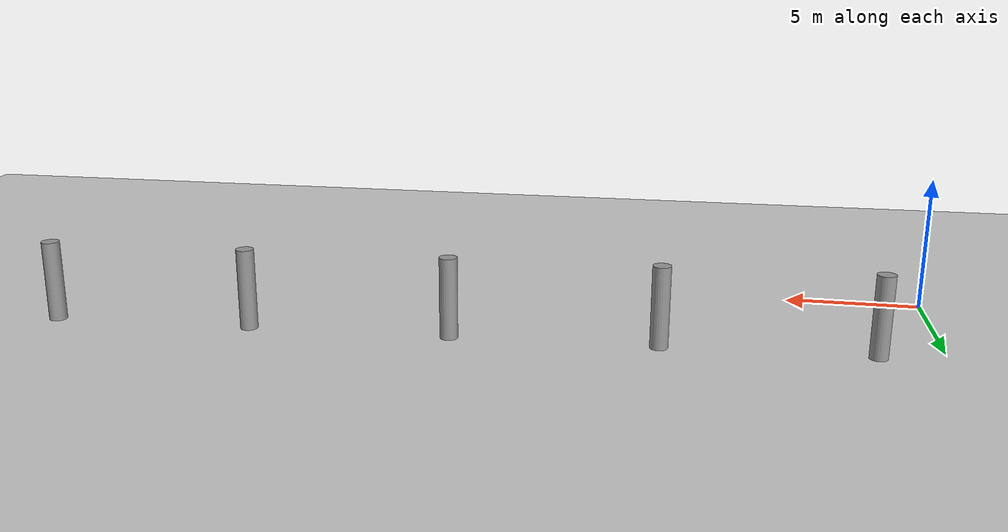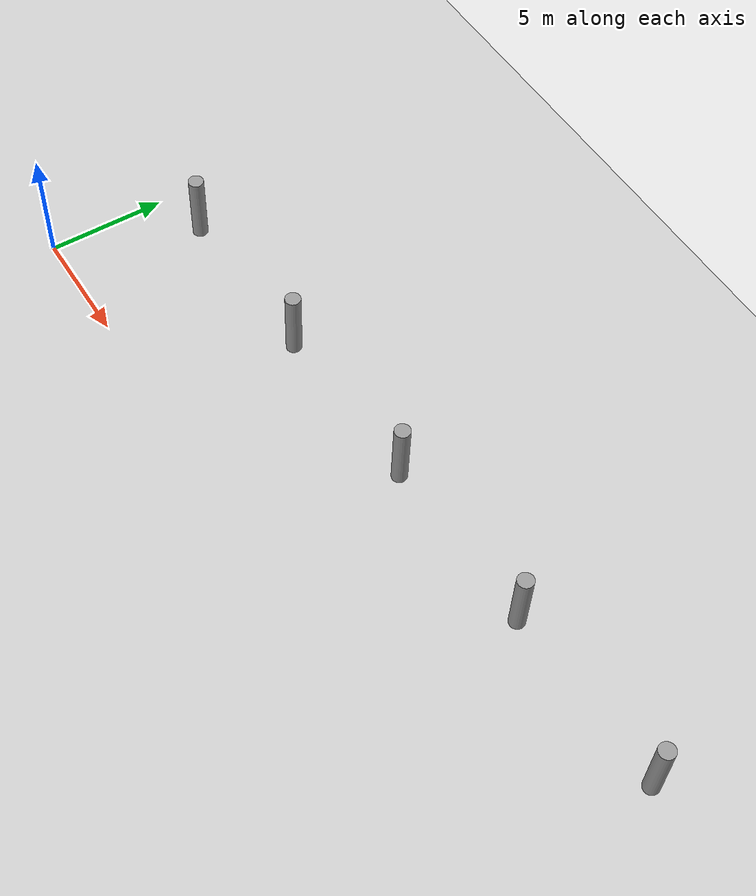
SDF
<sdf version="1.5">
 <world name="default">
  <include><uri>model://sun</uri></include>
  <include><uri>model://ground_plane</uri></include>
  <include>
   <uri>model://pillar</uri>
   <name>pillar1</name>
   <pose>32.100510 6.769004 0.0 0.0 0.0 0.0</pose>
  </include>
  <include><uri>model://pillar</uri><name>pillar2</name><pose>2.342716 5.768001 0.0 0.0 0.0 0.0</pose></include>
  <include>
   <uri>model://pillar</uri>
   <name>pillar3</name>
   <pose>17.231846 6.274395 0.0 0.0 0.0 0.0</pose>
  </include>
  <include>
   <uri>model://pillar</uri>
   <name>pillar4</name>
   <pose>24.666746 6.505016 0.0 0.0 0.0 0.0</pose>
  </include>
  <include><uri>model://pillar</uri><name>pillar5</name><pose>9.784185 6.009955 0.0 0.0 0.0 0.0</pose></include>
 </world>
</sdf>

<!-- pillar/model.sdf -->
<sdf version='1.6'>
  <model name='pillar'>
    <link name='link'>
      <pose frame=''>0 0 1.5 0 -0 0</pose>
      <inertial>
        <mass>1</mass>
        <inertia>
          <ixx>0.145833</ixx>
          <ixy>0</ixy>
          <ixz>0</ixz>
          <iyy>0.145833</iyy>
          <iyz>0</iyz>
          <izz>0.125</izz>
        </inertia>
        <pose frame=''>0 0 0 0 -0 0</pose>
      </inertial>
      <self_collide>0</self_collide>
      <kinematic>0</kinematic>
      <gravity>1</gravity>
      <visual name='visual'>
        <geometry>
          <cylinder>
            <radius>0.325</radius>
            <length>3</length>
          </cylinder>
        </geometry>
        <material>
          <script>
            <name>Gazebo/Grey</name>
            <uri>file://media/materials/scripts/gazebo.material</uri>
          </script>
          <shader type='pixel'>
            <normal_map>__default__</normal_map>
          </shader>
          <ambient>0.3 0.3 0.3 1</ambient>
          <diffuse>0.7 0.7 0.7 1</diffuse>
          <specular>0.01 0.01 0.01 1</specular>
          <emissive>0 0 0 1</emissive>
        </material>
        <pose frame=''>0 0 0 0 -0 0</pose>
        <transparency>0</transparency>
        <cast_shadows>1</cast_shadows>
      </visual>
      <collision name='collision'>
        <laser_retro>0</laser_retro>
        <max_contacts>10</max_contacts>
        <pose frame=''>0 0 0 0 -0 0</pose>
        <geometry>
          <cylinder>
            <radius>0.325</radius>
            <length>3</length>
          </cylinder>
        </geometry>
        <surface>
          <friction>
            <ode>
              <mu>1</mu>
              <mu2>1</mu2>
              <fdir1>0 0 0</fdir1>
              <slip1>0</slip1>
              <slip2>0</slip2>
            </ode>
            <torsional>
              <coefficient>1</coefficient>
              <patch_radius>0</patch_radius>
              <surface_radius>0</surface_radius>
              <use_patch_radius>1</use_patch_radius>
              <ode>
                <slip>0</slip>
              </ode>
            </torsional>
          </friction>
          <bounce>
            <restitution_coefficient>0</restitution_coefficient>
            <threshold>1e+06</threshold>
          </bounce>
          <contact>
            <collide_without_contact>0</collide_without_contact>
            <collide_without_contact_bitmask>1</collide_without_contact_bitmask>
            <collide_bitmask>1</collide_bitmask>
            <ode>
              <soft_cfm>0</soft_cfm>
              <soft_erp>0.2</soft_erp>
              <kp>1e+13</kp>
              <kd>1</kd>
              <max_vel>0.01</max_vel>
              <min_depth>0</min_depth>
            </ode>
            <bullet>
              <split_impulse>1</split_impulse>
              <split_impulse_penetration_threshold>-0.01</split_impulse_penetration_threshold>
              <soft_cfm>0</soft_cfm>
              <soft_erp>0.2</soft_erp>
              <kp>1e+13</kp>
              <kd>1</kd>
            </bullet>
          </contact>
        </surface>
      </collision>
    </link>
    <static>1</static>
    <allow_auto_disable>1</allow_auto_disable>
  </model>
</sdf>
